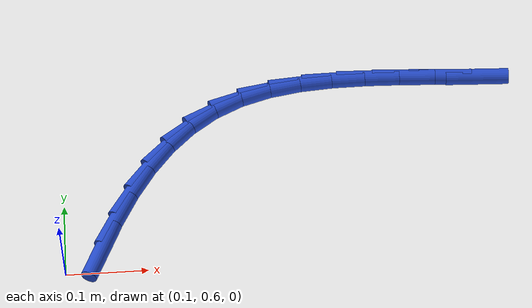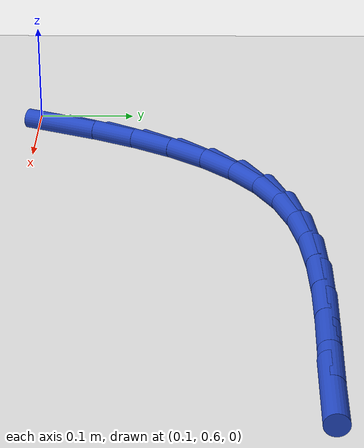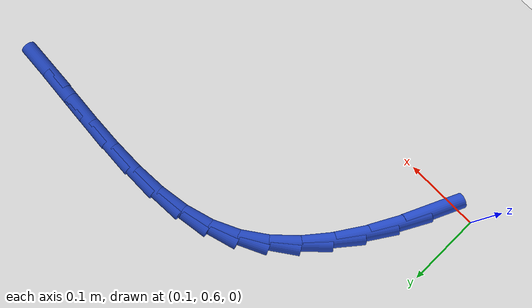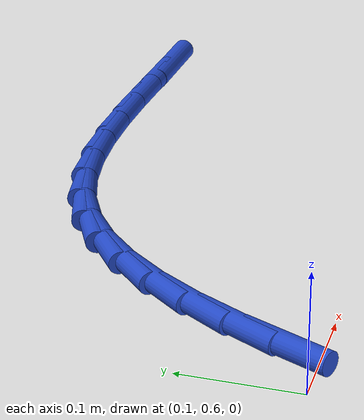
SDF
<sdf version="1.6">
 <world name="default">
  <model name="ground_plane">
   <static>1</static>
   <link name="link">
    <collision name="collision">
     <geometry><plane><normal>0 0 1</normal><size>100 100</size></plane></geometry>
     <surface><friction><ode><mu>100</mu><mu2>50</mu2></ode></friction></surface>
    </collision>
    <visual name="visual">
     <cast_shadows>0</cast_shadows>
     <geometry><plane><normal>0 0 1</normal><size>100 100</size></plane></geometry>
     <material>
      <script><uri>file://media/materials/scripts/gazebo.material</uri><name>Gazebo/WhiteGlow</name></script>
     </material>
    </visual>
   </link>
  </model>
  <model name="line">
   <link name="link_14">
    <pose>0.14439739109118455 0.6261623385929374 0.01 0 1.57 1.1585323496470719</pose>
    <collision name="collision">
     <geometry><cylinder><radius>0.01</radius><length>0.08</length></cylinder></geometry>
    </collision>
    <visual name="visual">
     <material>
      <script><name>Gazebo/Blue</name><uri>file://media/materials/scripts/gazebo.material</uri></script>
     </material>
     <geometry><cylinder><radius>0.01</radius><length>0.08</length></cylinder></geometry>
    </visual>
   </link>
   <link name="link_15">
    <pose>0.162949971865109 0.6685851569349592 0.01 0 1.57 1.0925550231910814</pose>
    <collision name="collision">
     <geometry><cylinder><radius>0.01</radius><length>0.08</length></cylinder></geometry>
    </collision>
    <visual name="visual">
     <material>
      <script><name>Gazebo/Blue</name><uri>file://media/materials/scripts/gazebo.material</uri></script>
     </material>
     <geometry><cylinder><radius>0.01</radius><length>0.08</length></cylinder></geometry>
    </visual>
   </link>
   <link name="link_16">
    <pose>0.18350816276686466 0.708243880689724 0.01 0 1.57 1.0099406676055473</pose>
    <collision name="collision">
     <geometry><cylinder><radius>0.01</radius><length>0.08</length></cylinder></geometry>
    </collision>
    <visual name="visual">
     <material>
      <script><name>Gazebo/Blue</name><uri>file://media/materials/scripts/gazebo.material</uri></script>
     </material>
     <geometry><cylinder><radius>0.01</radius><length>0.08</length></cylinder></geometry>
    </visual>
   </link>
   <link name="link_17">
    <pose>0.20632053920684884 0.7445610995055869 0.01 0 1.57 0.9075173838801668</pose>
    <collision name="collision">
     <geometry><cylinder><radius>0.01</radius><length>0.08</length></cylinder></geometry>
    </collision>
    <visual name="visual">
     <material>
      <script><name>Gazebo/Blue</name><uri>file://media/materials/scripts/gazebo.material</uri></script>
     </material>
     <geometry><cylinder><radius>0.01</radius><length>0.08</length></cylinder></geometry>
    </visual>
   </link>
   <link name="link_18">
    <pose>0.23163567659545897 0.7769594030309042 0.01 0 1.57 0.7824590899361151</pose>
    <collision name="collision">
     <geometry><cylinder><radius>0.01</radius><length>0.08</length></cylinder></geometry>
    </collision>
    <visual name="visual">
     <material>
      <script><name>Gazebo/Blue</name><uri>file://media/materials/scripts/gazebo.material</uri></script>
     </material>
     <geometry><cylinder><radius>0.01</radius><length>0.08</length></cylinder></geometry>
    </visual>
   </link>
   <link name="link_19">
    <pose>0.25970215034309213 0.8048613809140304 0.01 0 1.57 0.6337157590089862</pose>
    <collision name="collision">
     <geometry><cylinder><radius>0.01</radius><length>0.08</length></cylinder></geometry>
    </collision>
    <visual name="visual">
     <material>
      <script><name>Gazebo/Blue</name><uri>file://media/materials/scripts/gazebo.material</uri></script>
     </material>
     <geometry><cylinder><radius>0.01</radius><length>0.08</length></cylinder></geometry>
    </visual>
   </link>
   <link name="link_20">
    <pose>0.29076853586014584 0.8276896228033219 0.01 0 1.57 0.46460197282267884</pose>
    <collision name="collision">
     <geometry><cylinder><radius>0.01</radius><length>0.08</length></cylinder></geometry>
    </collision>
    <visual name="visual">
     <material>
      <script><name>Gazebo/Blue</name><uri>file://media/materials/scripts/gazebo.material</uri></script>
     </material>
     <geometry><cylinder><radius>0.01</radius><length>0.08</length></cylinder></geometry>
    </visual>
   </link>
   <link name="link_21">
    <pose>0.3250751701278635 0.8448838857514581 0.01 0 1.57 0.30072754248889544</pose>
    <collision name="collision">
     <geometry><cylinder><radius>0.01</radius><length>0.08</length></cylinder></geometry>
    </collision>
    <visual name="visual">
     <material>
      <script><name>Gazebo/Blue</name><uri>file://media/materials/scripts/gazebo.material</uri></script>
     </material>
     <geometry><cylinder><radius>0.01</radius><length>0.08</length></cylinder></geometry>
    </visual>
   </link>
   <link name="link_22">
    <pose>0.3625620313049287 0.8565098205650031 0.01 0 1.57 0.17018543914863102</pose>
    <collision name="collision">
     <geometry><cylinder><radius>0.01</radius><length>0.08</length></cylinder></geometry>
    </collision>
    <visual name="visual">
     <material>
      <script><name>Gazebo/Blue</name><uri>file://media/materials/scripts/gazebo.material</uri></script>
     </material>
     <geometry><cylinder><radius>0.01</radius><length>0.08</length></cylinder></geometry>
    </visual>
   </link>
   <link name="link_23">
    <pose>0.4027900635809096 0.863422916656749 0.01 0 1.57 0.07294865082528965</pose>
    <collision name="collision">
     <geometry><cylinder><radius>0.01</radius><length>0.08</length></cylinder></geometry>
    </collision>
    <visual name="visual">
     <material>
      <script><name>Gazebo/Blue</name><uri>file://media/materials/scripts/gazebo.material</uri></script>
     </material>
     <geometry><cylinder><radius>0.01</radius><length>0.08</length></cylinder></geometry>
    </visual>
   </link>
   <link name="link_24">
    <pose>0.4452959702288152 0.8665291771488355 0.01 0 1.57 0.004635024791395739</pose>
    <collision name="collision">
     <geometry><cylinder><radius>0.01</radius><length>0.08</length></cylinder></geometry>
    </collision>
    <visual name="visual">
     <material>
      <script><name>Gazebo/Blue</name><uri>file://media/materials/scripts/gazebo.material</uri></script>
     </material>
     <geometry><cylinder><radius>0.01</radius><length>0.08</length></cylinder></geometry>
    </visual>
   </link>
   <link name="link_25">
    <pose>0.48961645452165553 0.8667346051634027 0.01 0 1.57 -0.03915956770169774</pose>
    <collision name="collision">
     <geometry><cylinder><radius>0.01</radius><length>0.08</length></cylinder></geometry>
    </collision>
    <visual name="visual">
     <material>
      <script><name>Gazebo/Blue</name><uri>file://media/materials/scripts/gazebo.material</uri></script>
     </material>
     <geometry><cylinder><radius>0.01</radius><length>0.08</length></cylinder></geometry>
    </visual>
   </link>
   <link name="link_26">
    <pose>0.5352882197324396 0.8649452038225897 0.01 0 1.57 -0.06173937045378747</pose>
    <collision name="collision">
     <geometry><cylinder><radius>0.01</radius><length>0.08</length></cylinder></geometry>
    </collision>
    <visual name="visual">
     <material>
      <script><name>Gazebo/Blue</name><uri>file://media/materials/scripts/gazebo.material</uri></script>
     </material>
     <geometry><cylinder><radius>0.01</radius><length>0.08</length></cylinder></geometry>
    </visual>
   </link>
   <link name="link_27">
    <pose>0.5818479691341764 0.8620669762485365 0.01 0 1.57 -0.06505836708120889</pose>
    <collision name="collision">
     <geometry><cylinder><radius>0.01</radius><length>0.08</length></cylinder></geometry>
    </collision>
    <visual name="visual">
     <material>
      <script><name>Gazebo/Blue</name><uri>file://media/materials/scripts/gazebo.material</uri></script>
     </material>
     <geometry><cylinder><radius>0.01</radius><length>0.08</length></cylinder></geometry>
    </visual>
   </link>
   <link name="link_28">
    <pose>0.6288324059998759 0.8590059255633825 0.01 0 1.57 -0.04975822230091679</pose>
    <collision name="collision">
     <geometry><cylinder><radius>0.01</radius><length>0.08</length></cylinder></geometry>
    </collision>
    <visual name="visual">
     <material>
      <script><name>Gazebo/Blue</name><uri>file://media/materials/scripts/gazebo.material</uri></script>
     </material>
     <geometry><cylinder><radius>0.01</radius><length>0.08</length></cylinder></geometry>
    </visual>
   </link>
  </model>
 </world>
</sdf>
